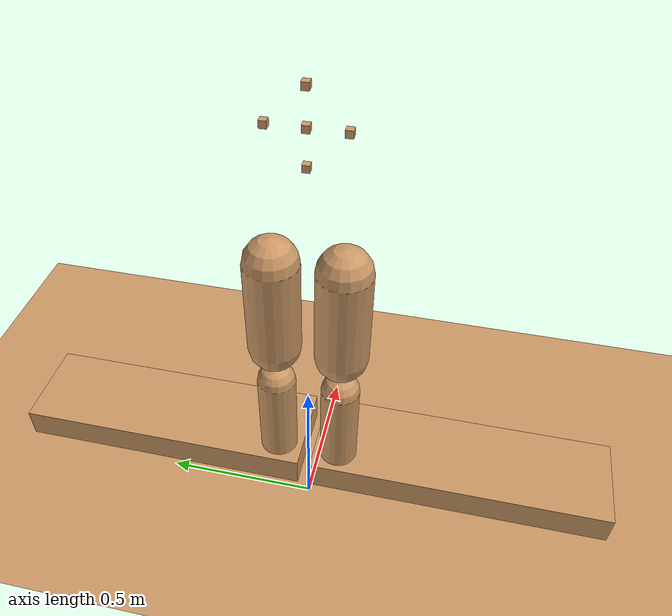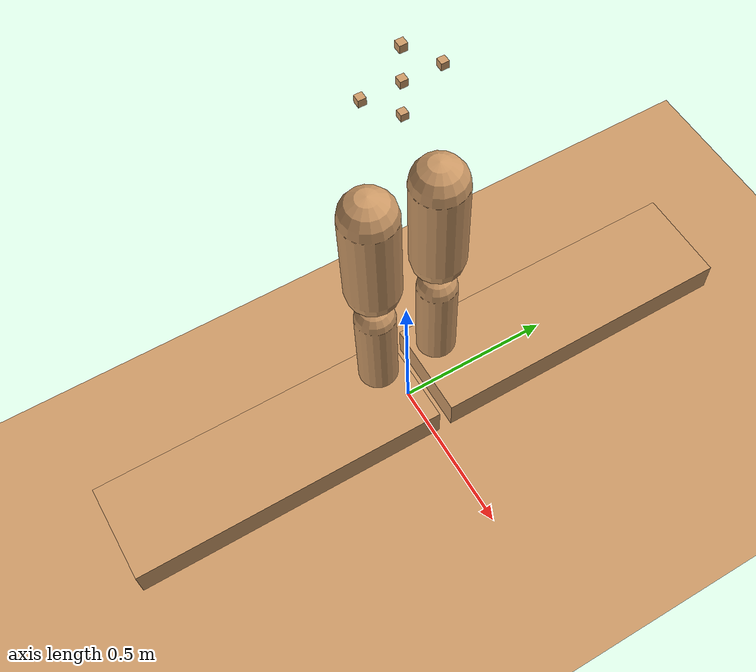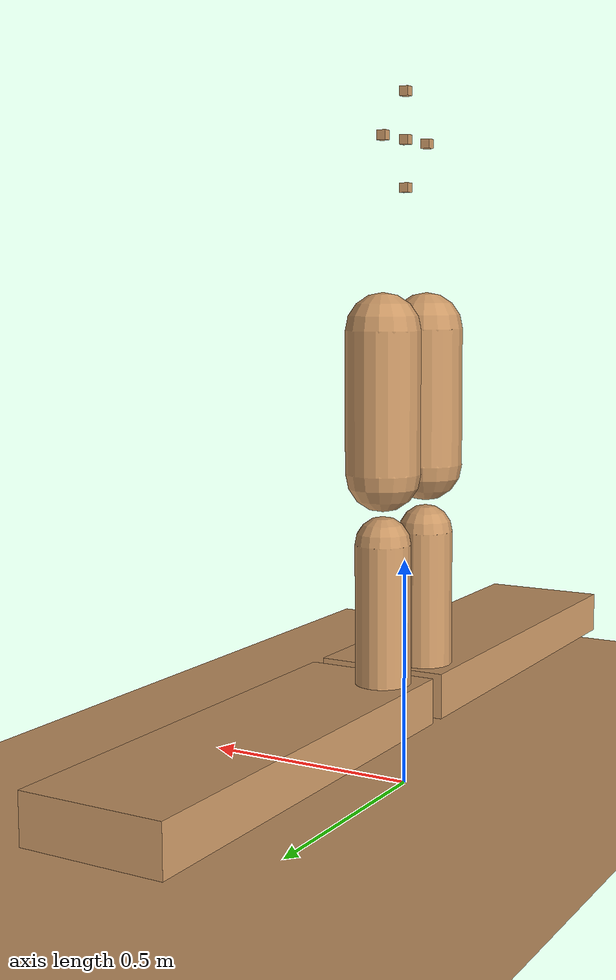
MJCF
<mujoco model='runner'>

	<default>
        <joint limited='true' damping='1' armature='0'/>
        <geom contype='1' conaffinity='1' condim='1' rgba='0.8 0.6 .4 1'
        	margin="0.001" solref=".02 1" solimp=".8 .8 .01" material="geom"/>
        <motor ctrlrange='-.4 .4' ctrllimited='true'/>
    </default>

	<option timestep='0.002' iterations="50" tolerance="1e-10"
		solver="Newton" jacobian="dense" cone="elliptic"/>

	<asset>
        <texture type="skybox" builtin="gradient" width="128" height="128" rgb1=".4 .6 .8"
            rgb2="0 0 0"/>
        <texture name="texgeom" type="cube" builtin="flat" mark="cross" width="127" height="1278"
            rgb1="0.8 0.6 0.4" rgb2="0.8 0.6 0.4" markrgb="1 1 1" random="0.01"/>
        <texture name="texplane" type="2d" builtin="checker" rgb1=".2 .3 .4" rgb2=".1 0.15 0.2"
            width="512" height="512"/>

        <material name='MatPlane' reflectance='0.3' texture="texplane" texrepeat="1 1" texuniform="true"/>
        <material name='geom' texture="texgeom" texuniform="true"/>
    </asset>

	<worldbody>
        <geom name='floor' pos='0 0 0' size='5 5 .125' type='plane' material='MatPlane' condim='3'/>

        <body name='Tom' pos='0 0 1.4'>
        	<freejoint name="root"/>

        	<geom name='body' type='box' pos='0 0 0' size='.01 .01 .01'/>
        	<geom name='bodyUp' type='box' pos='0 0 .1' size='.01 .01 .01'/>
        	<geom name='bodyDown' type='box' pos='0 0 -.1' size='.01 .01 .01'/>
        	<geom name='bodyLeft' type='box' pos='0 -.1 0' size='.01 .01 .01'/>
        	<geom name='bodyRight' type='box' pos='0 .1 0' size='.01 .01 .01'/>

        	<body name='leftLeg' pos='0 -.05 -.3'>
        		<joint name='leftUp' pos = '0 -.05 -.05' axis='0 -1 0' type='hinge'
        			range='-65 65' damping='5'/>
        		<geom name='leftUpLeg' type='capsule' fromto='0 -.05 -.1 0 -.05 -.4' size='0.08'/>
        		<body pos='0 0 -.45'>
        			<joint name='leftLow' pos = '0 -.05 -.05' axis='0 -1 0' type='hinge'
        				range='-105 0' damping='5'/>
        			<geom name='leftLowLeg' type='capsule' fromto='0 -.05 -.1 0 -.05 -.4' size='0.06'/>
        			<geom name='leftFeet' type='box' pos='.07 -.45 -.45' size='.15 .48 .05'
        				friction='30 0 0'/>
        		</body>
        	</body>

        	<body name='rightLeg' pos='0 .15 -.3'>
        		<joint name='rightUp' pos = '0 -.05 -.05' axis='0 -1 0' type='hinge'
        			range='-65 65' damping='5'/>
        		<geom name='rightUpLeg' type='capsule' fromto='0 -.05 -.1 0 -.05 -.4' size='0.08'/>
        		<body pos='0 0 -.45'>
        			<joint name='rightLow' pos = '0 -.05 -.05' axis='0 -1 0' type='hinge'
        				range='-105 0' damping='5'/>
        			<geom name='rightLowLeg' type='capsule' fromto='0 -.05 -.1 0 -.05 -.4' size='0.06'/>
        			<geom name='rightFeet'  type='box' pos='.07 .35 -.45' size='.15 .48 .05'
        				friction='30 0 0'/>
        		</body>
        	</body>

        </body>

	</worldbody>

    <actuator>
    	<motor name='leftUp'  		gear='1500' joint='leftUp' 	/>
       	<motor name='rightUp'  		gear='1500' joint='rightUp' 	/>
       	<motor name='leftLow'   	gear='-250' joint='leftLow' 	/>
       	<motor name='rightLow' 		gear='-250' joint='rightLow' />
    </actuator>

</mujoco>
